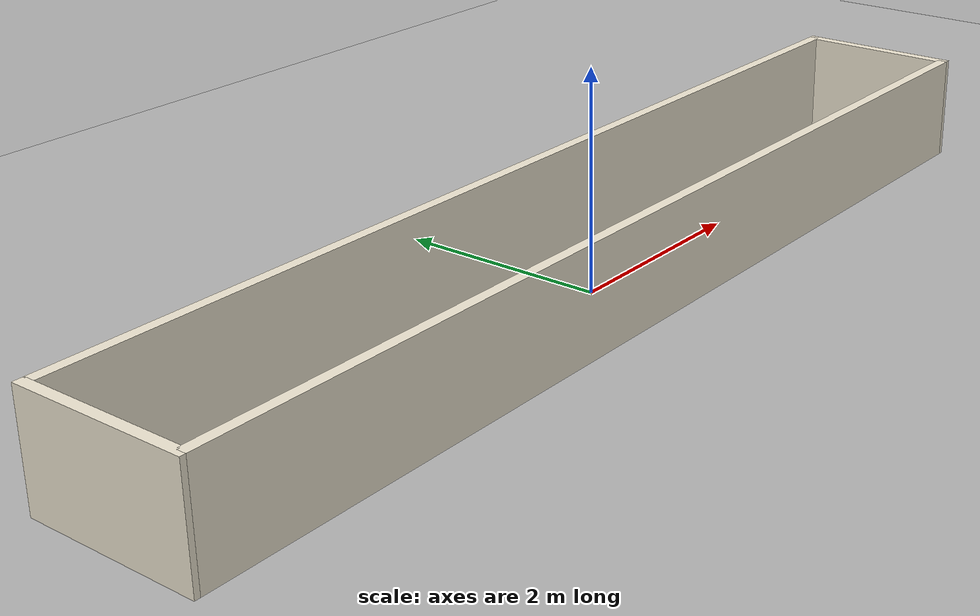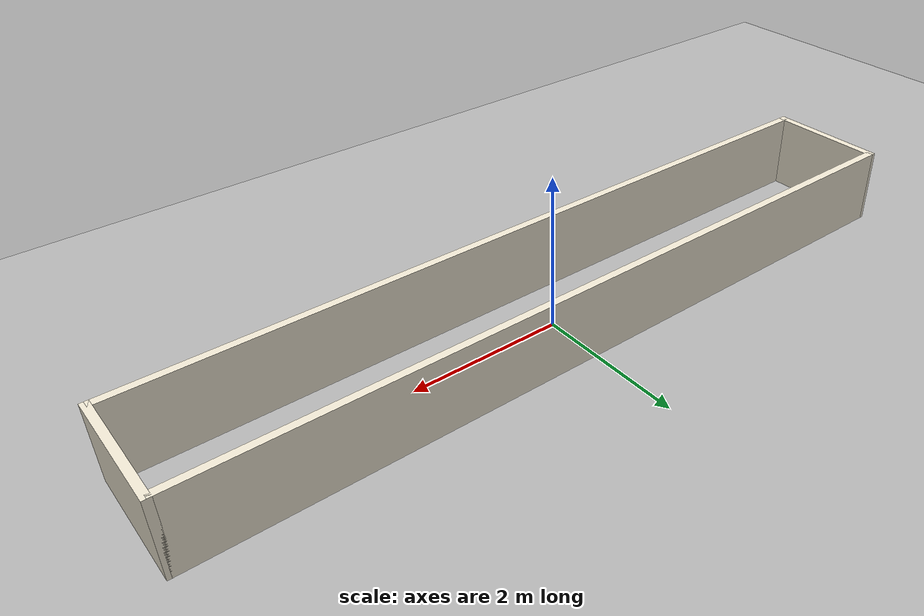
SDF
<?xml version="1.0"?>
<sdf version="1.9">
  <world name="corridor">
    <physics name="1ms" type="ignored">
      <max_step_size>0.001</max_step_size>
      <real_time_factor>1.0</real_time_factor>
    </physics>

    <plugin filename="gz-sim-physics-system" name="gz::sim::systems::Physics"/>
    <plugin filename="gz-sim-user-commands-system" name="gz::sim::systems::UserCommands"/>
    <plugin filename="gz-sim-scene-broadcaster-system" name="gz::sim::systems::SceneBroadcaster"/>
    <plugin filename="gz-sim-sensors-system" name="gz::sim::systems::Sensors">
      <render_engine>ogre2</render_engine>
    </plugin>
    <plugin filename="gz-sim-imu-system" name="gz::sim::systems::Imu"/>

    <gravity>0 0 -9.8</gravity>
    <scene>
      <ambient>0.6 0.6 0.6 1</ambient>
      <background>0.8 0.85 0.9 1</background>
      <grid>false</grid>
    </scene>

    <light type="directional" name="sun">
      <cast_shadows>true</cast_shadows>
      <pose>0 0 10 0 0 0</pose>
      <diffuse>0.9 0.9 0.9 1</diffuse>
      <specular>0.2 0.2 0.2 1</specular>
      <direction>-0.5 0.1 -0.9</direction>
    </light>

    <model name="ground_plane">
      <static>true</static>
      <link name="link">
        <collision name="collision">
          <geometry><plane><normal>0 0 1</normal><size>100 100</size></plane></geometry>
          <surface><friction><ode><mu>1.0</mu><mu2>1.0</mu2></ode></friction></surface>
        </collision>
        <visual name="visual">
          <geometry><plane><normal>0 0 1</normal><size>100 100</size></plane></geometry>
          <material><ambient>0.7 0.7 0.7 1</ambient><diffuse>0.7 0.7 0.7 1</diffuse></material>
        </visual>
      </link>
    </model>

    <!-- The corridor: 10 m long (x in [-5, 5]), 1.4 m wide (y in [-0.7, 0.7]), walls 1 m high. -->
    <model name="corridor_walls">
      <static>true</static>
      <link name="walls">

        <collision name="north_collision">
          <pose>0 0.75 0.5 0 0 0</pose>
          <geometry><box><size>10.1 0.1 1.0</size></box></geometry>
        </collision>
        <visual name="north_visual">
          <pose>0 0.75 0.5 0 0 0</pose>
          <geometry><box><size>10.1 0.1 1.0</size></box></geometry>
          <material><ambient>0.93 0.9 0.82 1</ambient><diffuse>0.93 0.9 0.82 1</diffuse></material>
        </visual>

        <collision name="south_collision">
          <pose>0 -0.75 0.5 0 0 0</pose>
          <geometry><box><size>10.1 0.1 1.0</size></box></geometry>
        </collision>
        <visual name="south_visual">
          <pose>0 -0.75 0.5 0 0 0</pose>
          <geometry><box><size>10.1 0.1 1.0</size></box></geometry>
          <material><ambient>0.93 0.9 0.82 1</ambient><diffuse>0.93 0.9 0.82 1</diffuse></material>
        </visual>

        <collision name="west_collision">
          <pose>-5.05 0 0.5 0 0 0</pose>
          <geometry><box><size>0.1 1.6 1.0</size></box></geometry>
        </collision>
        <visual name="west_visual">
          <pose>-5.05 0 0.5 0 0 0</pose>
          <geometry><box><size>0.1 1.6 1.0</size></box></geometry>
          <material><ambient>0.93 0.9 0.82 1</ambient><diffuse>0.93 0.9 0.82 1</diffuse></material>
        </visual>

        <collision name="east_collision">
          <pose>5.05 0 0.5 0 0 0</pose>
          <geometry><box><size>0.1 1.6 1.0</size></box></geometry>
        </collision>
        <visual name="east_visual">
          <pose>5.05 0 0.5 0 0 0</pose>
          <geometry><box><size>0.1 1.6 1.0</size></box></geometry>
          <material><ambient>0.93 0.9 0.82 1</ambient><diffuse>0.93 0.9 0.82 1</diffuse></material>
        </visual>

      </link>
    </model>
  </world>
</sdf>
